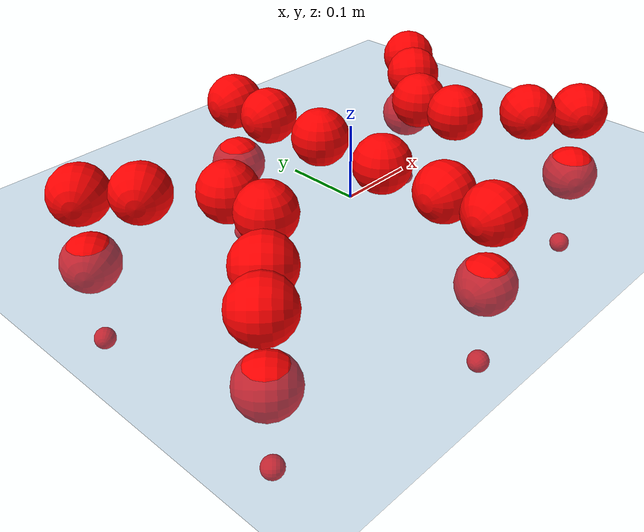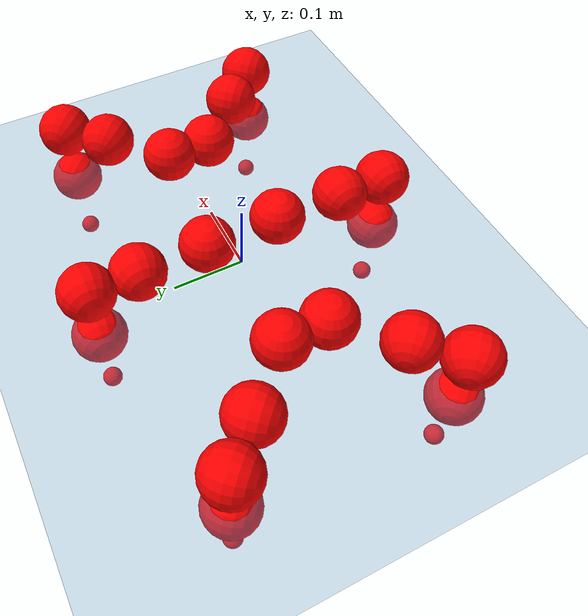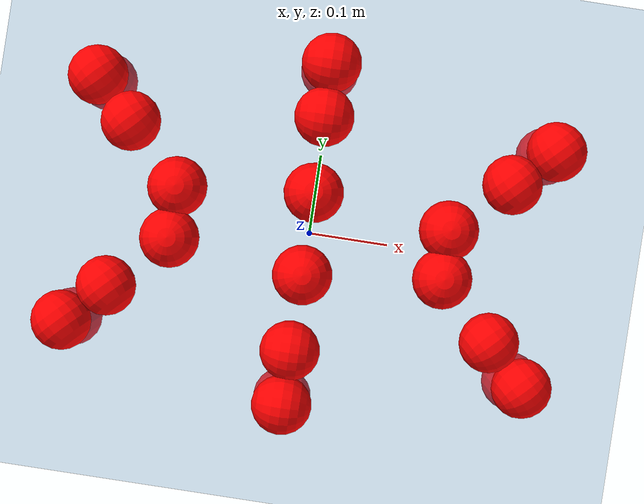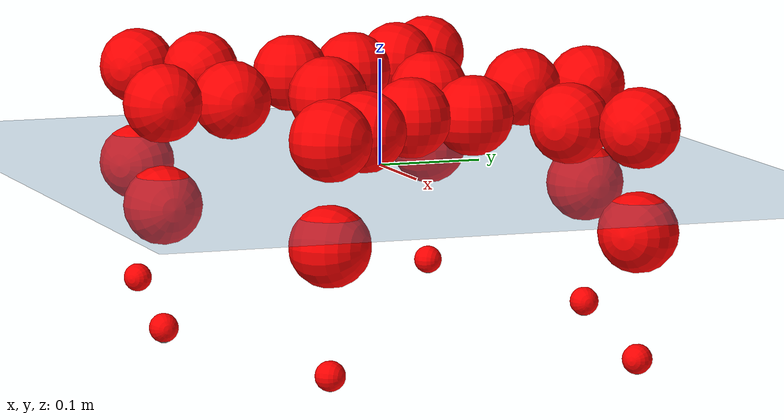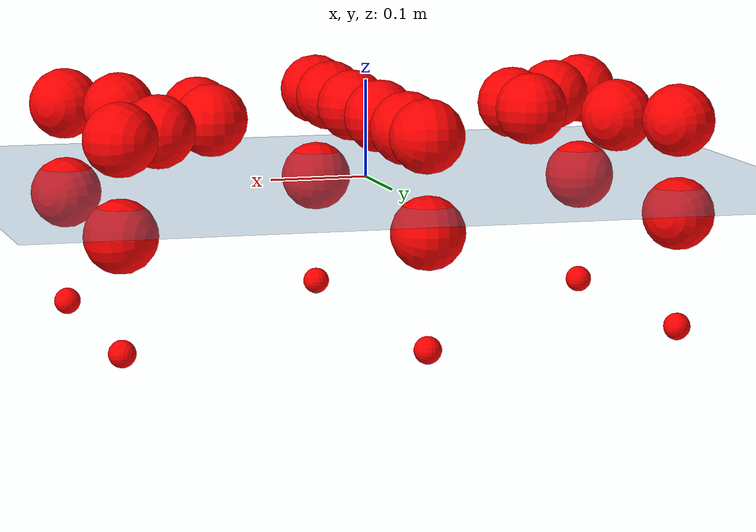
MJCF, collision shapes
<mujoco model="Golem">
  <compiler angle="radian" assetdir="assets" balanceinertia="true" inertiafromgeom="false"/>

  <option timestep="0.005" density="1.2" viscosity="2e-05"/>

  <size nkey="1"/>

  <visual>
    <quality shadowsize="8192"/>
    <map shadowclip="0.5"/>
  </visual>

  <default>
    <default class="/">
      <joint armature="0.01" damping="0.01" frictionloss="0.01"/>
      <geom contype="0" conaffinity="0" group="1" solref="-1000 -80"/>
      <site size="0.01 0.005 0.005" group="5"/>
      <general forcelimited="true" biastype="affine" gainprm="25" biasprm="0 -25 -0.5"/>
      <default class="visual">
        <geom type="mesh" group="2"/>
      </default>
      <default class="collision">
        <geom group="3"/>
      </default>
      <default class="foot">
        <geom size="0.01 0 0" condim="6" group="4" priority="1" solimp="0.015 1 0.01"/>
      </default>
      <default class="reward_collision_sphere">
        <geom group="5" rgba="1 0 0 1"/>
      </default>
    </default>
  </default>

  <asset>
    <texture type="skybox" colorspace="auto" name="//unnamed_texture_0" builtin="gradient" rgb1="0.95 0.95 0.95" rgb2="0.95 0.95 0.95" width="100" height="600"/>
    <texture type="2d" colorspace="auto" name="texplane" builtin="checker" rgb1="0.345 0.575 0.748" rgb2="0.345 0.575 0.748" markrgb="1 1 1" width="512" height="512"/>
    <material name="MatPlane" class="/" texture="texplane" texuniform="true" texrepeat="2 2" specular="0.9"/>
    <mesh name="body" class="/" file="body.stl" scale="0.001 0.001 0.001"/>
    <mesh name="coxa" class="/" file="coxa.stl" scale="0.001 0.001 0.001"/>
    <mesh name="femur" class="/" file="femur.stl" scale="0.001 0.001 0.001"/>
    <mesh name="tibia" class="/" file="tibia.stl" scale="0.001 0.001 0.001"/>
    <mesh name="tarsus" class="/" file="tarsus.stl" scale="0.001 0.001 0.001"/>
  </asset>

  <worldbody>
    <geom name="floor" class="/" size="100 100 0.125" type="plane" group="0" material="MatPlane"/>
    <light name="toplight_shadow" class="/" pos="0 0 5" dir="0.0990148 0.0990148 -0.990148" type="directional" ambient="0.04 0.04 0.04" diffuse="0.55 0.55 0.55" specular="0.12 0.12 0.12"/>
    <light name="toplight_fill" class="/" pos="0 0 5" dir="0.0990148 0.0990148 -0.990148" type="directional" castshadow="false" ambient="0.04 0.04 0.04" diffuse="0.3 0.3 0.3" specular="0.08 0.08 0.08"/>
    <body name="trunk" pos="-0.000235012 -0.000145451 -0.000848999" quat="1 -2.01537e-05 -1.51417e-05 2.20767e-05">
      <inertial pos="0.000688206 -0.000699846 -0.00455147" quat="0.999999 8.92434e-05 -0.000312875 0.00103549" mass="2.90683" diaginertia="0.0146213 0.00101856 0.0137677"/>
      <joint name="//unnamed_joint_0" type="free"/>
      <geom name="//unnamed_geom_1" class="/" pos="0 0 0.0683701" quat="1 0 0 0" type="mesh" rgba="0.9 0.9 0.9 1" mesh="body"/>
      <site name="imu" class="/" pos="0.13986 0.00432932 0.106837" size="0.00926778"/>
      <camera name="track" class="/" pos="0 -1.26843 0" quat="0.707107 0.707107 0 0" mode="trackcom"/>
      <camera name="ego_camera" class="/" pos="0.140119 0 0.106828" quat="-0.5 -0.5 0.5 0.5"/>
      <body name="coxa_RR" pos="-0.191386 -0.054064 0.0692088" quat="0.382636 -0.00021888 0.000182929 -0.923899">
        <inertial pos="4.40937e-05 -0.000272879 0.000764599" quat="0.999993 -0.00363213 -0.000360271 -9.81074e-05" mass="0.157749" diaginertia="0.0144856 0.00102687 0.0139255"/>
        <joint name="coxa_joint_RR" class="/" pos="0 0 0" axis="-0.000356694 -0.00163852 -0.999999" range="-3.15261 3.13975" armature="0.00924448" damping="0.00504534" frictionloss="0.00913"/>
        <geom name="//unnamed_geom_2" class="/" type="mesh" rgba="0.2 0.2 0.2 1" mesh="coxa"/>
        <geom name="//unnamed_geom_3" class="reward_collision_sphere" size="0.0370711" pos="-0.0323351 0 0"/>
        <body name="femur_RR" pos="0.0650396 0.00119578 -0.00124477" quat="0.500202 -0.499706 0.500131 0.49996">
          <inertial pos="0.000561021 -0.000461697 -0.000294873" quat="1 -6.41589e-05 8.22917e-05 3.34921e-05" mass="0.157309" diaginertia="0.0143631 0.00101109 0.0137179"/>
          <joint name="femur_joint_RR" class="/" pos="0 0 0" axis="0.000172897 -0.00111994 -0.999999" range="-3.12198 3.1218" armature="0.00964624" damping="0" frictionloss="0.00929751"/>
          <geom name="//unnamed_geom_4" class="/" type="mesh" rgba="0.9 0.9 0.9 1" mesh="femur"/>
          <geom name="//unnamed_geom_5" class="reward_collision_sphere" size="0.0370711"/>
          <body name="tibia_RR" pos="0.000216263 -0.0693675 0.00142386" quat="-1.08269e-05 1 3.51545e-06 -2.82672e-05">
            <inertial pos="-0.000606063 0.000453729 0.000292948" quat="0.999992 -0.00146715 0.00285018 -0.0023179" mass="0.159085" diaginertia="0.0143978 0.00100792 0.0138662"/>
            <joint name="tibia_joint_RR" class="/" pos="0 0 0" axis="-0.00359261 0.00124909 0.999993" range="-3.12687 3.12366" armature="0.00904036" damping="0" frictionloss="0.00942928"/>
            <geom name="//unnamed_geom_6" class="/" type="mesh" rgba="0.2 0.2 0.2 1" mesh="tibia"/>
            <geom name="//unnamed_geom_7" class="reward_collision_sphere" size="0.0370711"/>
            <body name="tarsus_RR" pos="0.0952537 0.000624482 -0.000684552" quat="1 -5.89721e-05 7.37764e-05 2.87591e-05">
              <inertial pos="0.0654096 0.00155657 0.000409849" quat="0.502343 0.499926 0.497894 0.499828" mass="0.158536" diaginertia="0.0147002 0.00101892 0.013931"/>
              <joint name="tarsus_joint_RR" class="/" pos="0 0 0" axis="-0.00854037 -0.000471155 0.999963" stiffness="0.000242603" range="-3.13188 3.13371" armature="0.00922391" damping="0.0426124" frictionloss="0.00893112"/>
              <geom name="//unnamed_geom_8" class="/" type="mesh" rgba="0.9 0.9 0.9 1" mesh="tarsus"/>
              <geom name="foot_1" class="foot" size="0.00904408" pos="0.120718 0 0" quat="0 -0.707107 0 0.707107"/>
              <geom name="//unnamed_geom_10" class="reward_collision_sphere" size="0.0370711"/>
              <geom name="//unnamed_geom_11" class="reward_collision_sphere" size="0.0139017" pos="0.115868 0 0"/>
              <site name="foot_1" class="foot" pos="0.120718 0 0" quat="0 -0.707107 0 0.707107" size="0.00926778"/>
            </body>
          </body>
        </body>
      </body>
      <body name="coxa_RM" pos="-0.00037767 -0.0842087 0.0689664" quat="0.707108 -2.39039e-05 -9.44024e-07 -0.707106">
        <inertial pos="0.000169749 -0.000504588 0.000500776" quat="1 0.000269987 -0.000478016 0.000432637" mass="0.161668" diaginertia="0.0146142 0.00103371 0.0139691"/>
        <joint name="coxa_joint_RM" class="/" pos="0 0 0" axis="0.00116278 0.00193229 -0.999997" range="-3.14759 3.13274" armature="0.00913636" damping="0.0101027" frictionloss="0.00899694"/>
        <geom name="//unnamed_geom_12" class="/" type="mesh" rgba="0.2 0.2 0.2 1" mesh="coxa"/>
        <geom name="//unnamed_geom_13" class="reward_collision_sphere" size="0.0370711" pos="-0.0323351 0 0"/>
        <body name="femur_RM" pos="0.0617076 -0.00116762 -0.000192952" quat="0.500019 -0.499796 0.500185 0.5">
          <inertial pos="-0.000143456 0.000575335 -0.000662384" quat="0.999998 0.00156924 0.00112678 -0.00100804" mass="0.159714" diaginertia="0.0145723 0.00102594 0.0139259"/>
          <joint name="femur_joint_RM" class="/" pos="0 0 0" axis="0.00165759 0.00220841 -0.999996" range="-3.13089 3.15305" armature="0.00926734" damping="0.00291816" frictionloss="0.00936552"/>
          <geom name="//unnamed_geom_14" class="/" type="mesh" rgba="0.9 0.9 0.9 1" mesh="femur"/>
          <geom name="//unnamed_geom_15" class="reward_collision_sphere" size="0.0370711"/>
          <body name="tibia_RM" pos="-4.71199e-05 -0.067105 -6.95237e-05" quat="3.16713e-05 1 -4.48565e-05 -6.44979e-05">
            <inertial pos="-0.000337842 -0.000942078 -0.000225681" quat="0.999998 -0.000443471 -0.00088969 -0.00165311" mass="0.159847" diaginertia="0.014602 0.00102817 0.0138879"/>
            <joint name="tibia_joint_RM" class="/" pos="0 0 0" axis="0.00062732 0.00140732 0.999999" stiffness="0.000166589" range="-3.14539 3.12537" armature="0.00895537" damping="0.00504974" frictionloss="0.0088816"/>
            <geom name="//unnamed_geom_16" class="/" type="mesh" rgba="0.2 0.2 0.2 1" mesh="tibia"/>
            <geom name="//unnamed_geom_17" class="reward_collision_sphere" size="0.0370711"/>
            <body name="tarsus_RM" pos="0.0955458 6.98859e-05 0.000814958" quat="1 -2.36637e-05 0.000160598 4.2313e-05">
              <inertial pos="0.0651514 -0.00032933 -0.000179111" quat="0.499899 0.500312 0.499796 0.499993" mass="0.157465" diaginertia="0.0143349 0.00100965 0.0137586"/>
              <joint name="tarsus_joint_RM" class="/" pos="0 0 0" axis="-0.00119233 0.00229636 0.999997" range="-3.13958 3.14071" armature="0.00932948" damping="0.00672662" frictionloss="0.00929051"/>
              <geom name="//unnamed_geom_18" class="/" type="mesh" rgba="0.9 0.9 0.9 1" mesh="tarsus"/>
              <geom name="foot_2" class="foot" size="0.00959369" pos="0.120718 0 0" quat="0 -0.707107 0 0.707107"/>
              <geom name="//unnamed_geom_20" class="reward_collision_sphere" size="0.0370711"/>
              <geom name="//unnamed_geom_21" class="reward_collision_sphere" size="0.0139017" pos="0.115868 0 0"/>
              <site name="foot_2" class="foot" pos="0.120718 0 0" quat="0 -0.707107 0 0.707107" size="0.00926778"/>
            </body>
          </body>
        </body>
      </body>
      <body name="coxa_RF" pos="0.192939 -0.0537826 0.0688769" quat="0.92383 -1.3483e-06 -5.71853e-05 -0.382804">
        <inertial pos="-7.69557e-05 -0.000311997 -8.12291e-05" quat="0.999999 0.000480269 0.000641554 0.000632419" mass="0.158524" diaginertia="0.0145523 0.0010304 0.0139306"/>
        <joint name="coxa_joint_RF" class="/" pos="0 0 0" axis="0.000954772 -0.000741121 -0.999999" range="-3.12109 3.13642" armature="0.0095864" damping="0.00689345" frictionloss="0.00933641"/>
        <geom name="//unnamed_geom_22" class="/" type="mesh" rgba="0.2 0.2 0.2 1" mesh="coxa"/>
        <geom name="//unnamed_geom_23" class="reward_collision_sphere" size="0.0370711" pos="-0.0323351 0 0"/>
        <body name="femur_RF" pos="0.0644879 -0.000118034 -0.000687123" quat="0.500016 -0.499891 0.500001 0.500092">
          <inertial pos="0.000113437 -0.000814708 0.000713967" quat="0.999999 0.000599441 0.00109589 -0.000631593" mass="0.16051" diaginertia="0.0145989 0.00103131 0.0139666"/>
          <joint name="femur_joint_RF" class="/" pos="0 0 0" axis="-1.31131e-05 0.000311037 -1" range="-3.14543 3.13557" armature="0.00884708" damping="0.0021459" frictionloss="0.0092096"/>
          <geom name="//unnamed_geom_24" class="/" type="mesh" rgba="0.9 0.9 0.9 1" mesh="femur"/>
          <geom name="//unnamed_geom_25" class="reward_collision_sphere" size="0.0370711"/>
          <body name="tibia_RF" pos="-0.000603666 -0.0685076 -0.00116403" quat="-2.68621e-05 1 1.37901e-05 -2.4576e-05">
            <inertial pos="3.04057e-05 -0.000525223 -0.000211769" quat="0.999999 -0.000674175 0.000782611 0.000793999" mass="0.159009" diaginertia="0.0146637 0.00103706 0.0138031"/>
            <joint name="tibia_joint_RF" class="/" pos="0 0 0" axis="6.29196e-05 -4.03581e-05 1" stiffness="0.00030115" range="-3.13926 3.12783" armature="0.00909134" damping="0.0123251" frictionloss="0.00954652"/>
            <geom name="//unnamed_geom_26" class="/" type="mesh" rgba="0.2 0.2 0.2 1" mesh="tibia"/>
            <geom name="//unnamed_geom_27" class="reward_collision_sphere" size="0.0370711"/>
            <body name="tarsus_RF" pos="0.0940308 -7.12916e-05 0.00071546" quat="1 -1.56457e-05 -4.50935e-05 0.00010562">
              <inertial pos="0.0646042 2.91785e-05 -0.000416816" quat="0.498044 0.499088 0.501723 0.501136" mass="0.16106" diaginertia="0.0145941 0.00102338 0.0139744"/>
              <joint name="tarsus_joint_RF" class="/" pos="0 0 0" axis="-0.000454414 -0.000102321 1" range="-3.13634 3.1385" armature="0.009646" damping="0" frictionloss="0.00929139"/>
              <geom name="//unnamed_geom_28" class="/" type="mesh" rgba="0.9 0.9 0.9 1" mesh="tarsus"/>
              <geom name="foot_3" class="foot" size="0.00923323" pos="0.120718 0 0" quat="0 -0.707107 0 0.707107"/>
              <geom name="//unnamed_geom_30" class="reward_collision_sphere" size="0.0370711"/>
              <geom name="//unnamed_geom_31" class="reward_collision_sphere" size="0.0139017" pos="0.115868 0 0"/>
              <site name="foot_3" class="foot" pos="0.120718 0 0" quat="0 -0.707107 0 0.707107" size="0.00926778"/>
            </body>
          </body>
        </body>
      </body>
      <body name="coxa_LR" pos="-0.191092 0.0552865 0.0696024" quat="0.382751 0.000176129 0.000131151 0.923852">
        <inertial pos="-6.54807e-05 -0.000657025 0.000490927" quat="0.999995 0.000523515 0.00230994 0.00204995" mass="0.158831" diaginertia="0.014554 0.00102311 0.0138499"/>
        <joint name="coxa_joint_LR" class="/" pos="0 0 0" axis="-0.0032874 0.00166474 -0.999993" range="-3.12853 3.14156" armature="0.00930525" damping="0.00826566" frictionloss="0.00911001"/>
        <geom name="//unnamed_geom_32" class="/" type="mesh" rgba="0.2 0.2 0.2 1" mesh="coxa"/>
        <geom name="//unnamed_geom_33" class="reward_collision_sphere" size="0.0370711" pos="-0.0323351 0 0"/>
        <body name="femur_LR" pos="0.0661323 -0.00171889 -0.000641686" quat="0.500362 -0.499625 0.500015 0.499999">
          <inertial pos="3.37634e-05 -0.000149332 0.000359457" quat="1 0.000679069 -0.000252445 -0.0002205" mass="0.160147" diaginertia="0.014426 0.00102207 0.013965"/>
          <joint name="femur_joint_LR" class="/" pos="0 0 0" axis="0.00118441 0.0012701 0.999998" range="-3.12752 3.15125" armature="0.00892112" damping="0.00909507" frictionloss="0.00923374"/>
          <geom name="//unnamed_geom_34" class="/" type="mesh" rgba="0.9 0.9 0.9 1" mesh="femur"/>
          <geom name="//unnamed_geom_35" class="reward_collision_sphere" size="0.0370711"/>
          <body name="tibia_LR" pos="0.000977042 -0.0695288 -0.00108577" quat="0.000200358 1 -5.66045e-05 0.000459728">
            <inertial pos="2.65233e-05 -0.000246819 -0.00049829" quat="0.999991 -0.00132958 0.00382884 -0.00118372" mass="0.159217" diaginertia="0.0143871 0.00101903 0.0138969"/>
            <joint name="tibia_joint_LR" class="/" pos="0 0 0" axis="-0.000107301 -4.36846e-05 -1" range="-3.12653 3.12276" armature="0.00963106" damping="0" frictionloss="0.00886749"/>
            <geom name="//unnamed_geom_36" class="/" type="mesh" rgba="0.2 0.2 0.2 1" mesh="tibia"/>
            <geom name="//unnamed_geom_37" class="reward_collision_sphere" size="0.0370711"/>
            <body name="tarsus_LR" pos="0.0947252 0.00103934 0.00116918" quat="1 -0.000164217 -0.000125531 6.78688e-05">
              <inertial pos="0.0643682 0.00039154 -0.000217993" quat="0.49723 0.502841 0.501181 0.498728" mass="0.156819" diaginertia="0.0144941 0.00101783 0.0138594"/>
              <joint name="tarsus_joint_LR" class="/" pos="0 0 0" axis="0.000180144 0.00148764 -0.999999" range="-3.13219 3.14218" armature="0.00928263" damping="0.0291392" frictionloss="0.00935047"/>
              <geom name="//unnamed_geom_38" class="/" type="mesh" rgba="0.9 0.9 0.9 1" mesh="tarsus"/>
              <geom name="foot_4" class="foot" size="0.0092839" pos="0.120718 0 0" quat="0.707107 0 -0.707107 0"/>
              <geom name="//unnamed_geom_40" class="reward_collision_sphere" size="0.0370711"/>
              <geom name="//unnamed_geom_41" class="reward_collision_sphere" size="0.0139017" pos="0.115868 0 0"/>
              <site name="foot_4" class="foot" pos="0.120718 0 0" quat="0.707107 0 -0.707107 0" size="0.00926778"/>
            </body>
          </body>
        </body>
      </body>
      <body name="coxa_LM" pos="-0.00170102 0.0823646 0.0693514" quat="0.707472 0.000226018 -5.69592e-05 0.706741">
        <inertial pos="0.000744735 -0.000285029 0.00159323" quat="1 0.000266154 -7.62753e-05 -0.00066696" mass="0.159089" diaginertia="0.0146129 0.00102203 0.0138866"/>
        <joint name="coxa_joint_LM" class="/" pos="0 0 0" axis="-4.5046e-05 -0.000115941 -1" range="-3.13776 3.13687" armature="0.00924808" damping="0.00593141" frictionloss="0.00966917"/>
        <geom name="//unnamed_geom_42" class="/" type="mesh" rgba="0.2 0.2 0.2 1" mesh="coxa"/>
        <geom name="//unnamed_geom_43" class="reward_collision_sphere" size="0.0370711" pos="-0.0323351 0 0"/>
        <body name="femur_LM" pos="0.0619982 0.00122955 -0.00125919" quat="0.499959 -0.499984 0.500042 0.500016">
          <inertial pos="-0.000689105 -0.000645904 -0.000130809" quat="1 -5.96808e-05 0.000576278 -0.000593859" mass="0.159315" diaginertia="0.0144477 0.00102775 0.0139591"/>
          <joint name="femur_joint_LM" class="/" pos="0 0 0" axis="-0.0011875 0.00358799 0.999993" range="-3.13622 3.15286" armature="0.00900542" damping="0.00391608" frictionloss="0.00887174"/>
          <geom name="//unnamed_geom_44" class="/" type="mesh" rgba="0.9 0.9 0.9 1" mesh="femur"/>
          <geom name="//unnamed_geom_45" class="reward_collision_sphere" size="0.0370711"/>
          <body name="tibia_LM" pos="0.000156983 -0.0667322 0.000995468" quat="4.58165e-05 1 3.45663e-05 -0.000104883">
            <inertial pos="0.000784081 -0.000966488 0.000551858" quat="0.999995 -0.00164331 0.00245239 -0.000725334" mass="0.159571" diaginertia="0.0146393 0.0010243 0.0140276"/>
            <joint name="tibia_joint_LM" class="/" pos="0 0 0" axis="-0.00182089 -0.00427518 -0.999989" range="-3.14031 3.14212" armature="0.00930994" damping="0.000994253" frictionloss="0.0093265"/>
            <geom name="//unnamed_geom_46" class="/" type="mesh" rgba="0.2 0.2 0.2 1" mesh="tibia"/>
            <geom name="//unnamed_geom_47" class="reward_collision_sphere" size="0.0370711"/>
            <body name="tarsus_LM" pos="0.094893 -0.000332358 -0.001242" quat="1 6.09805e-06 -7.98211e-06 3.23919e-06">
              <inertial pos="0.0662405 0.000181604 0.000393238" quat="0.499597 0.499411 0.499962 0.501028" mass="0.158749" diaginertia="0.0145781 0.0010371 0.0141129"/>
              <joint name="tarsus_joint_LM" class="/" pos="0 0 0" axis="-0.0014938 -0.00107292 -0.999998" range="-3.13183 3.14354" armature="0.00937306" damping="0.00256412" frictionloss="0.00923962"/>
              <geom name="//unnamed_geom_48" class="/" type="mesh" rgba="0.9 0.9 0.9 1" mesh="tarsus"/>
              <geom name="foot_5" class="foot" size="0.00940573" pos="0.120718 0 0" quat="0.707107 0 -0.707107 0"/>
              <geom name="//unnamed_geom_50" class="reward_collision_sphere" size="0.0370711"/>
              <geom name="//unnamed_geom_51" class="reward_collision_sphere" size="0.0139017" pos="0.115868 0 0"/>
              <site name="foot_5" class="foot" pos="0.120718 0 0" quat="0.707107 0 -0.707107 0" size="0.00926778"/>
            </body>
          </body>
        </body>
      </body>
      <body name="coxa_LF" pos="0.19223 0.0521702 0.0681583" quat="0.923906 1.57646e-05 -6.4194e-06 0.38262">
        <inertial pos="0.000266566 -0.000440955 -7.46667e-05" quat="0.999996 0.000135071 0.000586895 -0.0028954" mass="0.160347" diaginertia="0.0147157 0.00103092 0.0138986"/>
        <joint name="coxa_joint_LF" class="/" pos="0 0 0" axis="-0.000765196 0.00113168 -0.999999" range="-3.13849 3.1403" armature="0.00915847" damping="0.00405867" frictionloss="0.00946864"/>
        <geom name="//unnamed_geom_52" class="/" type="mesh" rgba="0.2 0.2 0.2 1" mesh="coxa"/>
        <geom name="//unnamed_geom_53" class="reward_collision_sphere" size="0.0370711" pos="-0.0323351 0 0"/>
        <body name="femur_LF" pos="0.0638062 -0.000977199 -0.00132244" quat="0.499817 -0.499974 0.499998 0.500212">
          <inertial pos="-0.000163833 0.000110947 2.56525e-05" quat="1 -8.12134e-05 -4.24529e-05 -2.25809e-05" mass="0.158802" diaginertia="0.0146223 0.00102446 0.0139829"/>
          <joint name="femur_joint_LF" class="/" pos="0 0 0" axis="0.00586354 -0.00409817 0.999974" range="-3.13715 3.15163" armature="0.00884356" damping="0.00142064" frictionloss="0.00914203"/>
          <geom name="//unnamed_geom_54" class="/" type="mesh" rgba="0.9 0.9 0.9 1" mesh="femur"/>
          <geom name="//unnamed_geom_55" class="reward_collision_sphere" size="0.0370711"/>
          <body name="tibia_LF" pos="0.00045368 -0.0678785 0.00029224" quat="7.70184e-05 1 -2.93787e-06 0.000331744">
            <inertial pos="-0.000177466 0.000316174 0.00014272" quat="1 -0.000295777 0.000235289 0.000643179" mass="0.159399" diaginertia="0.0146012 0.00102529 0.013937"/>
            <joint name="tibia_joint_LF" class="/" pos="0 0 0" axis="0.000975181 -0.00610038 -0.999981" range="-3.135 3.12138" armature="0.00925234" damping="0.00223298" frictionloss="0.00935226"/>
            <geom name="//unnamed_geom_56" class="/" type="mesh" rgba="0.2 0.2 0.2 1" mesh="tibia"/>
            <geom name="//unnamed_geom_57" class="reward_collision_sphere" size="0.0370711"/>
            <body name="tarsus_LF" pos="0.0946201 -0.000321187 0.000676484" quat="1 -0.000102606 9.41208e-05 -0.000144436">
              <inertial pos="0.0662152 -0.000287305 -0.000126836" quat="0.500476 0.500181 0.499715 0.499627" mass="0.159444" diaginertia="0.0145883 0.00103073 0.0138178"/>
              <joint name="tarsus_joint_LF" class="/" pos="0 0 0" axis="-0.000426502 0.00605332 -0.999982" stiffness="0.0251357" range="-3.13768 3.14024" armature="0.00925546" damping="0.0058674" frictionloss="0.00940709"/>
              <geom name="//unnamed_geom_58" class="/" type="mesh" rgba="0.9 0.9 0.9 1" mesh="tarsus"/>
              <geom name="foot_6" class="foot" size="0.0092442" pos="0.120718 0 0" quat="0.707107 0 -0.707107 0"/>
              <geom name="//unnamed_geom_60" class="reward_collision_sphere" size="0.0370711"/>
              <geom name="//unnamed_geom_61" class="reward_collision_sphere" size="0.0139017" pos="0.115868 0 0"/>
              <site name="foot_6" class="foot" pos="0.120718 0 0" quat="0.707107 0 -0.707107 0" size="0.00926778"/>
            </body>
          </body>
        </body>
      </body>
    </body>
  </worldbody>

  <contact>
    <pair class="/" geom1="floor" geom2="foot_1" name="//unnamed_contact_0"/>
    <pair class="/" geom1="floor" geom2="foot_2" name="//unnamed_contact_1"/>
    <pair class="/" geom1="floor" geom2="foot_3" name="//unnamed_contact_2"/>
    <pair class="/" geom1="floor" geom2="foot_4" name="//unnamed_contact_3"/>
    <pair class="/" geom1="floor" geom2="foot_5" name="//unnamed_contact_4"/>
    <pair class="/" geom1="floor" geom2="foot_6" name="//unnamed_contact_5"/>
  </contact>

  <actuator>
    <general name="coxa_joint_RR" class="/" joint="coxa_joint_RR" forcerange="-6.67445 6.67445" gainprm="22.3501" biasprm="0 -22.3501 -0.480451"/>
    <general name="femur_joint_RR" class="/" joint="femur_joint_RR" forcerange="-6.94319 6.94319" gainprm="22.3501" biasprm="0 -22.3501 -0.480451"/>
    <general name="tibia_joint_RR" class="/" joint="tibia_joint_RR" forcerange="-6.69505 6.69505" gainprm="22.3501" biasprm="0 -22.3501 -0.480451"/>
    <general name="tarsus_joint_RR" class="/" joint="tarsus_joint_RR" forcerange="-6.98716 6.98716" gainprm="22.3501" biasprm="0 -22.3501 -0.480451"/>
    <general name="coxa_joint_RM" class="/" joint="coxa_joint_RM" forcerange="-6.75873 6.75873" gainprm="22.3501" biasprm="0 -22.3501 -0.480451"/>
    <general name="femur_joint_RM" class="/" joint="femur_joint_RM" forcerange="-6.69829 6.69829" gainprm="22.3501" biasprm="0 -22.3501 -0.480451"/>
    <general name="tibia_joint_RM" class="/" joint="tibia_joint_RM" forcerange="-6.61557 6.61557" gainprm="22.3501" biasprm="0 -22.3501 -0.480451"/>
    <general name="tarsus_joint_RM" class="/" joint="tarsus_joint_RM" forcerange="-6.705 6.705" gainprm="22.3501" biasprm="0 -22.3501 -0.480451"/>
    <general name="coxa_joint_RF" class="/" joint="coxa_joint_RF" forcerange="-6.84187 6.84187" gainprm="22.3501" biasprm="0 -22.3501 -0.480451"/>
    <general name="femur_joint_RF" class="/" joint="femur_joint_RF" forcerange="-6.92246 6.92246" gainprm="22.3501" biasprm="0 -22.3501 -0.480451"/>
    <general name="tibia_joint_RF" class="/" joint="tibia_joint_RF" forcerange="-6.59343 6.59343" gainprm="22.3501" biasprm="0 -22.3501 -0.480451"/>
    <general name="tarsus_joint_RF" class="/" joint="tarsus_joint_RF" forcerange="-6.91174 6.91174" gainprm="22.3501" biasprm="0 -22.3501 -0.480451"/>
    <general name="coxa_joint_LR" class="/" joint="coxa_joint_LR" forcerange="-6.89035 6.89035" gainprm="22.3501" biasprm="0 -22.3501 -0.480451"/>
    <general name="femur_joint_LR" class="/" joint="femur_joint_LR" forcerange="-6.72728 6.72728" gainprm="22.3501" biasprm="0 -22.3501 -0.480451"/>
    <general name="tibia_joint_LR" class="/" joint="tibia_joint_LR" forcerange="-6.55466 6.55466" gainprm="22.3501" biasprm="0 -22.3501 -0.480451"/>
    <general name="tarsus_joint_LR" class="/" joint="tarsus_joint_LR" forcerange="-6.73887 6.73887" gainprm="22.3501" biasprm="0 -22.3501 -0.480451"/>
    <general name="coxa_joint_LM" class="/" joint="coxa_joint_LM" forcerange="-6.61146 6.61146" gainprm="22.3501" biasprm="0 -22.3501 -0.480451"/>
    <general name="femur_joint_LM" class="/" joint="femur_joint_LM" forcerange="-6.74343 6.74343" gainprm="22.3501" biasprm="0 -22.3501 -0.480451"/>
    <general name="tibia_joint_LM" class="/" joint="tibia_joint_LM" forcerange="-6.75277 6.75277" gainprm="22.3501" biasprm="0 -22.3501 -0.480451"/>
    <general name="tarsus_joint_LM" class="/" joint="tarsus_joint_LM" forcerange="-6.9771 6.9771" gainprm="22.3501" biasprm="0 -22.3501 -0.480451"/>
    <general name="coxa_joint_LF" class="/" joint="coxa_joint_LF" forcerange="-6.76026 6.76026" gainprm="22.3501" biasprm="0 -22.3501 -0.480451"/>
    <general name="femur_joint_LF" class="/" joint="femur_joint_LF" forcerange="-6.862 6.862" gainprm="22.3501" biasprm="0 -22.3501 -0.480451"/>
    <general name="tibia_joint_LF" class="/" joint="tibia_joint_LF" forcerange="-6.79805 6.79805" gainprm="22.3501" biasprm="0 -22.3501 -0.480451"/>
    <general name="tarsus_joint_LF" class="/" joint="tarsus_joint_LF" forcerange="-6.78133 6.78133" gainprm="22.3501" biasprm="0 -22.3501 -0.480451"/>
  </actuator>

  <sensor>
    <gyro site="imu" name="imu_angular_velocity"/>
    <velocimeter site="imu" name="imu_linear_velocity"/>
    <framelinvel objtype="site" objname="foot_1" name="foot_1_global_linear_velocity"/>
    <framelinvel objtype="site" objname="foot_2" name="foot_2_global_linear_velocity"/>
    <framelinvel objtype="site" objname="foot_3" name="foot_3_global_linear_velocity"/>
    <framelinvel objtype="site" objname="foot_4" name="foot_4_global_linear_velocity"/>
    <framelinvel objtype="site" objname="foot_5" name="foot_5_global_linear_velocity"/>
    <framelinvel objtype="site" objname="foot_6" name="foot_6_global_linear_velocity"/>
  </sensor>

  <keyframe>
    <key name="home" qpos="0 0 0.1457 1 0 0 0 0 0 0 0 0 0 0 0 0 0 0 0 0 0 0 0 0 0 0 0 0 0 0 0"/>
  </keyframe>
</mujoco>
